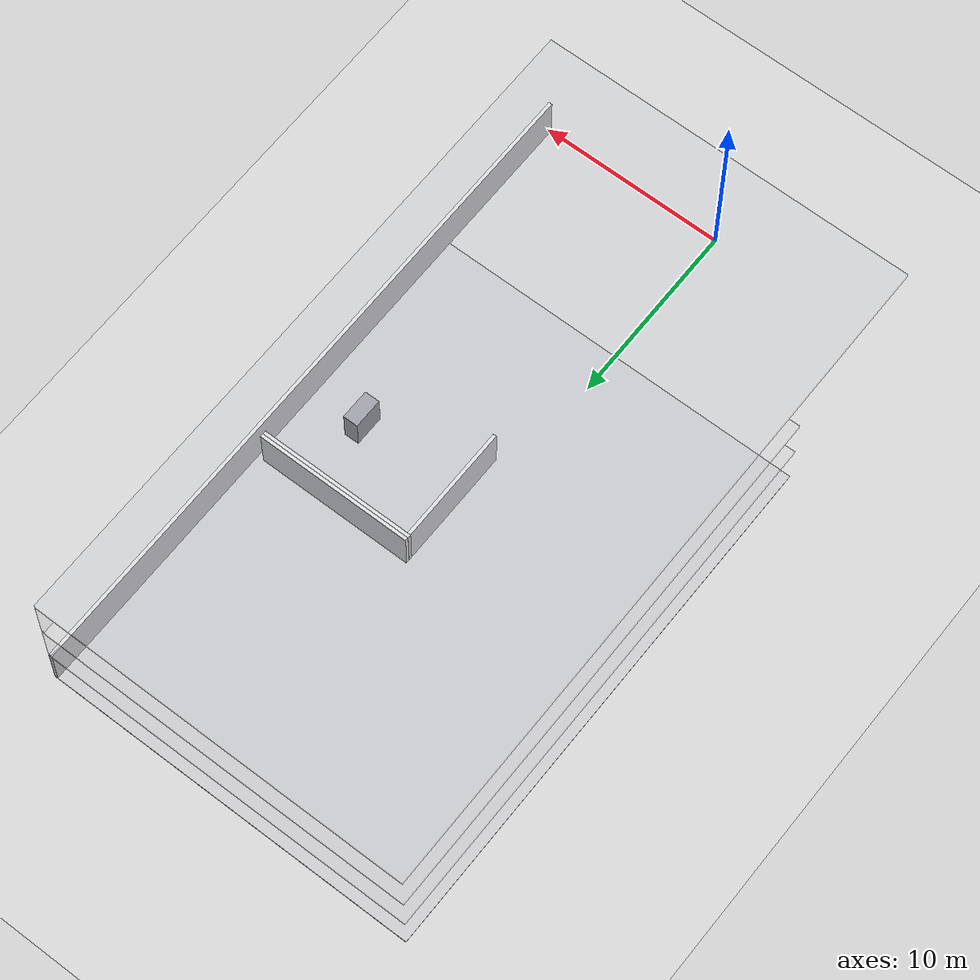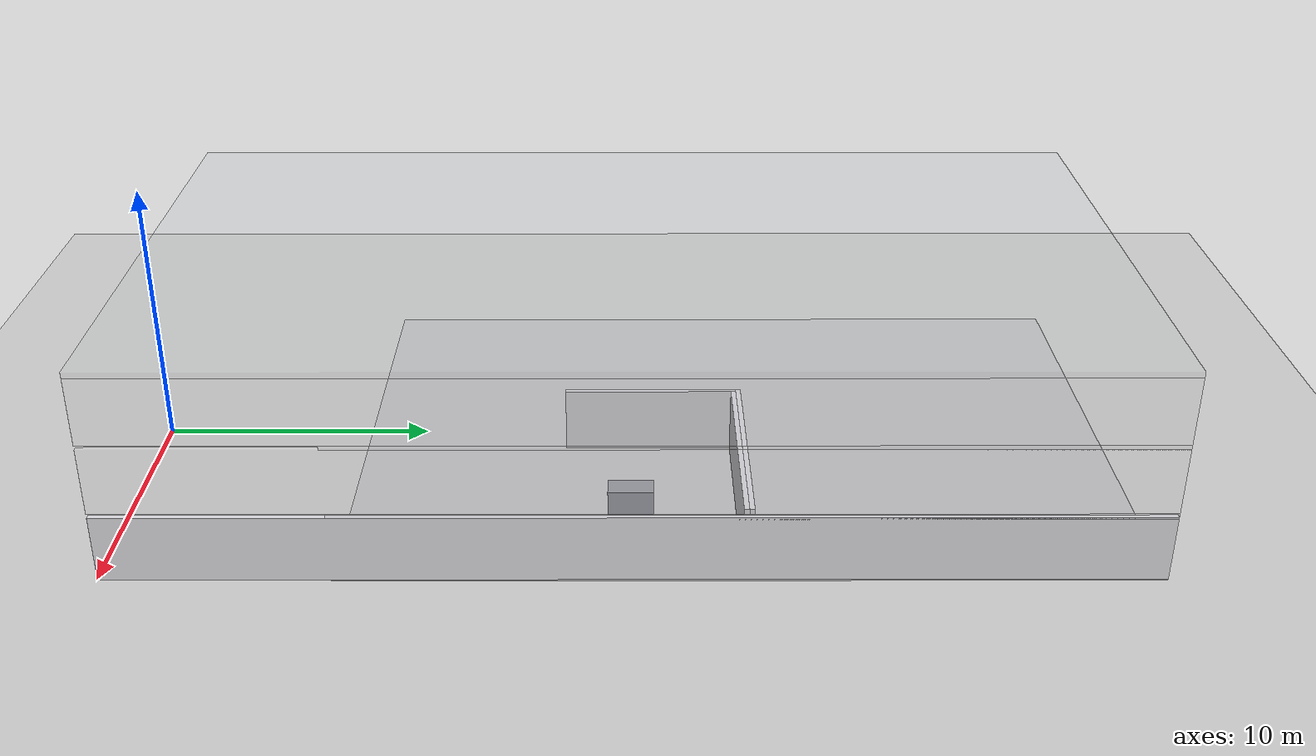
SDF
<sdf version="1.7">
 <world name="generated_world">
  <include><uri>model://sun</uri></include>
  <include><uri>model://ground_plane</uri></include>
  <model name="generated_building">
   <static>true</static>
   <link name="slab_floor_0_0">
    <pose>0.0000 21.9250 -0.1100 0.0000 0.0000 0.0000</pose>
    <collision name="slab_floor_0_0_collision">
     <geometry><box><size>20.0000 28.1500 0.2200</size></box></geometry>
    </collision>
    <visual name="slab_floor_0_0_visual">
     <geometry><box><size>20.0000 28.1500 0.2200</size></box></geometry>
     <material><ambient>0.76 0.76 0.77 1</ambient><diffuse>0.76 0.76 0.77 1</diffuse></material>
    </visual>
    <gravity>false</gravity>
   </link>
   <link name="exterior_east_floor_0">
    <pose>9.9100 18.0000 1.2250 0.0000 0.0000 0.0000</pose>
    <collision name="exterior_east_floor_0_collision">
     <geometry><box><size>0.1800 36.0000 2.4500</size></box></geometry>
    </collision>
    <visual name="exterior_east_floor_0_visual">
     <geometry><box><size>0.1800 36.0000 2.4500</size></box></geometry>
     <material><ambient>0.86 0.86 0.88 1</ambient><diffuse>0.86 0.86 0.88 1</diffuse></material>
    </visual>
    <gravity>false</gravity>
   </link>
   <link name="floor_0_room_1_corridor_wall_upper">
    <pose>1.1900 18.6725 1.2250 0.0000 0.0000 0.0000</pose>
    <collision name="floor_0_room_1_corridor_wall_upper_collision">
     <geometry><box><size>0.1800 6.4150 2.4500</size></box></geometry>
    </collision>
    <visual name="floor_0_room_1_corridor_wall_upper_visual">
     <geometry><box><size>0.1800 6.4150 2.4500</size></box></geometry>
     <material><ambient>0.86 0.86 0.88 1</ambient><diffuse>0.86 0.86 0.88 1</diffuse></material>
    </visual>
    <gravity>false</gravity>
   </link>
   <link name="floor_0_room_1_north_wall">
    <pose>5.3000 21.7900 1.2250 0.0000 0.0000 0.0000</pose>
    <collision name="floor_0_room_1_north_wall_collision">
     <geometry><box><size>8.4000 0.1800 2.4500</size></box></geometry>
    </collision>
    <visual name="floor_0_room_1_north_wall_visual">
     <geometry><box><size>8.4000 0.1800 2.4500</size></box></geometry>
     <material><ambient>0.86 0.86 0.88 1</ambient><diffuse>0.86 0.86 0.88 1</diffuse></material>
    </visual>
    <gravity>false</gravity>
   </link>
   <link name="floor_0_room_3_south_wall">
    <pose>5.3000 21.9700 1.2250 0.0000 0.0000 0.0000</pose>
    <collision name="floor_0_room_3_south_wall_collision">
     <geometry><box><size>8.4000 0.1800 2.4500</size></box></geometry>
    </collision>
    <visual name="floor_0_room_3_south_wall_visual">
     <geometry><box><size>8.4000 0.1800 2.4500</size></box></geometry>
     <material><ambient>0.86 0.86 0.88 1</ambient><diffuse>0.86 0.86 0.88 1</diffuse></material>
    </visual>
    <gravity>false</gravity>
   </link>
   <link name="floor_0_room_1_rack_b">
    <pose>7.0000 17.9225 0.9000 0.0000 0.0000 0.0000</pose>
    <collision name="floor_0_room_1_rack_b_collision">
     <geometry><box><size>0.8000 1.6000 1.8000</size></box></geometry>
    </collision>
    <visual name="floor_0_room_1_rack_b_visual">
     <geometry><box><size>0.8000 1.6000 1.8000</size></box></geometry>
     <material><ambient>0.56 0.57 0.60 1</ambient><diffuse>0.56 0.57 0.60 1</diffuse></material>
    </visual>
    <gravity>false</gravity>
   </link>
   <link name="slab_floor_1_0">
    <pose>0.0000 21.9250 2.4900 0.0000 0.0000 0.0000</pose>
    <collision name="slab_floor_1_0_collision">
     <geometry><box><size>20.0000 28.1500 0.2200</size></box></geometry>
    </collision>
    <visual name="slab_floor_1_0_visual">
     <geometry><box><size>20.0000 28.1500 0.2200</size></box></geometry>
     <material><ambient>0.76 0.76 0.77 1</ambient><diffuse>0.76 0.76 0.77 1</diffuse></material>
     <transparency>0.80</transparency>
    </visual>
    <gravity>false</gravity>
   </link>
   <link name="exterior_east_floor_1">
    <pose>9.9100 18.0000 3.8250 0.0000 0.0000 0.0000</pose>
    <collision name="exterior_east_floor_1_collision">
     <geometry><box><size>0.1800 36.0000 2.4500</size></box></geometry>
    </collision>
    <visual name="exterior_east_floor_1_visual">
     <geometry><box><size>0.1800 36.0000 2.4500</size></box></geometry>
     <material><ambient>0.86 0.86 0.88 1</ambient><diffuse>0.86 0.86 0.88 1</diffuse></material>
     <transparency>0.80</transparency>
    </visual>
    <gravity>false</gravity>
   </link>
   <link name="floor_1_room_1_corridor_wall_upper">
    <pose>1.1900 18.6725 3.8250 0.0000 0.0000 0.0000</pose>
    <collision name="floor_1_room_1_corridor_wall_upper_collision">
     <geometry><box><size>0.1800 6.4150 2.4500</size></box></geometry>
    </collision>
    <visual name="floor_1_room_1_corridor_wall_upper_visual">
     <geometry><box><size>0.1800 6.4150 2.4500</size></box></geometry>
     <material><ambient>0.86 0.86 0.88 1</ambient><diffuse>0.86 0.86 0.88 1</diffuse></material>
     <transparency>0.80</transparency>
    </visual>
    <gravity>false</gravity>
   </link>
   <link name="floor_1_room_1_north_wall">
    <pose>5.3000 21.7900 3.8250 0.0000 0.0000 0.0000</pose>
    <collision name="floor_1_room_1_north_wall_collision">
     <geometry><box><size>8.4000 0.1800 2.4500</size></box></geometry>
    </collision>
    <visual name="floor_1_room_1_north_wall_visual">
     <geometry><box><size>8.4000 0.1800 2.4500</size></box></geometry>
     <material><ambient>0.86 0.86 0.88 1</ambient><diffuse>0.86 0.86 0.88 1</diffuse></material>
     <transparency>0.80</transparency>
    </visual>
    <gravity>false</gravity>
   </link>
   <link name="floor_1_room_3_south_wall">
    <pose>5.3000 21.9700 3.8250 0.0000 0.0000 0.0000</pose>
    <collision name="floor_1_room_3_south_wall_collision">
     <geometry><box><size>8.4000 0.1800 2.4500</size></box></geometry>
    </collision>
    <visual name="floor_1_room_3_south_wall_visual">
     <geometry><box><size>8.4000 0.1800 2.4500</size></box></geometry>
     <material><ambient>0.86 0.86 0.88 1</ambient><diffuse>0.86 0.86 0.88 1</diffuse></material>
     <transparency>0.80</transparency>
    </visual>
    <gravity>false</gravity>
   </link>
   <link name="slab_floor_2_0">
    <pose>0.0000 21.9250 5.0900 0.0000 0.0000 0.0000</pose>
    <collision name="slab_floor_2_0_collision">
     <geometry><box><size>20.0000 28.1500 0.2200</size></box></geometry>
    </collision>
    <visual name="slab_floor_2_0_visual">
     <geometry><box><size>20.0000 28.1500 0.2200</size></box></geometry>
     <material><ambient>0.76 0.76 0.77 1</ambient><diffuse>0.76 0.76 0.77 1</diffuse></material>
     <transparency>0.80</transparency>
    </visual>
    <gravity>false</gravity>
   </link>
   <link name="exterior_east_floor_2">
    <pose>9.9100 18.0000 6.4250 0.0000 0.0000 0.0000</pose>
    <collision name="exterior_east_floor_2_collision">
     <geometry><box><size>0.1800 36.0000 2.4500</size></box></geometry>
    </collision>
    <visual name="exterior_east_floor_2_visual">
     <geometry><box><size>0.1800 36.0000 2.4500</size></box></geometry>
     <material><ambient>0.86 0.86 0.88 1</ambient><diffuse>0.86 0.86 0.88 1</diffuse></material>
     <transparency>0.80</transparency>
    </visual>
    <gravity>false</gravity>
   </link>
   <link name="floor_2_room_1_corridor_wall_upper">
    <pose>1.1900 18.6725 6.4250 0.0000 0.0000 0.0000</pose>
    <collision name="floor_2_room_1_corridor_wall_upper_collision">
     <geometry><box><size>0.1800 6.4150 2.4500</size></box></geometry>
    </collision>
    <visual name="floor_2_room_1_corridor_wall_upper_visual">
     <geometry><box><size>0.1800 6.4150 2.4500</size></box></geometry>
     <material><ambient>0.86 0.86 0.88 1</ambient><diffuse>0.86 0.86 0.88 1</diffuse></material>
     <transparency>0.80</transparency>
    </visual>
    <gravity>false</gravity>
   </link>
   <link name="floor_2_room_1_north_wall">
    <pose>5.3000 21.7900 6.4250 0.0000 0.0000 0.0000</pose>
    <collision name="floor_2_room_1_north_wall_collision">
     <geometry><box><size>8.4000 0.1800 2.4500</size></box></geometry>
    </collision>
    <visual name="floor_2_room_1_north_wall_visual">
     <geometry><box><size>8.4000 0.1800 2.4500</size></box></geometry>
     <material><ambient>0.86 0.86 0.88 1</ambient><diffuse>0.86 0.86 0.88 1</diffuse></material>
     <transparency>0.80</transparency>
    </visual>
    <gravity>false</gravity>
   </link>
   <link name="floor_2_room_1_rack_b">
    <pose>7.0000 17.9225 6.1000 0.0000 0.0000 0.0000</pose>
    <collision name="floor_2_room_1_rack_b_collision">
     <geometry><box><size>0.8000 1.6000 1.8000</size></box></geometry>
    </collision>
    <visual name="floor_2_room_1_rack_b_visual">
     <geometry><box><size>0.8000 1.6000 1.8000</size></box></geometry>
     <material><ambient>0.56 0.57 0.60 1</ambient><diffuse>0.56 0.57 0.60 1</diffuse></material>
     <transparency>0.80</transparency>
    </visual>
    <gravity>false</gravity>
   </link>
   <link name="roof">
    <pose>0.0000 18.0000 7.7600 0.0000 0.0000 0.0000</pose>
    <collision name="roof_collision">
     <geometry><box><size>20.0000 36.0000 0.2200</size></box></geometry>
    </collision>
    <visual name="roof_visual">
     <geometry><box><size>20.0000 36.0000 0.2200</size></box></geometry>
     <material><ambient>0.72 0.74 0.76 1</ambient><diffuse>0.72 0.74 0.76 1</diffuse></material>
     <transparency>0.80</transparency>
    </visual>
    <gravity>false</gravity>
   </link>
  </model>
 </world>
</sdf>
